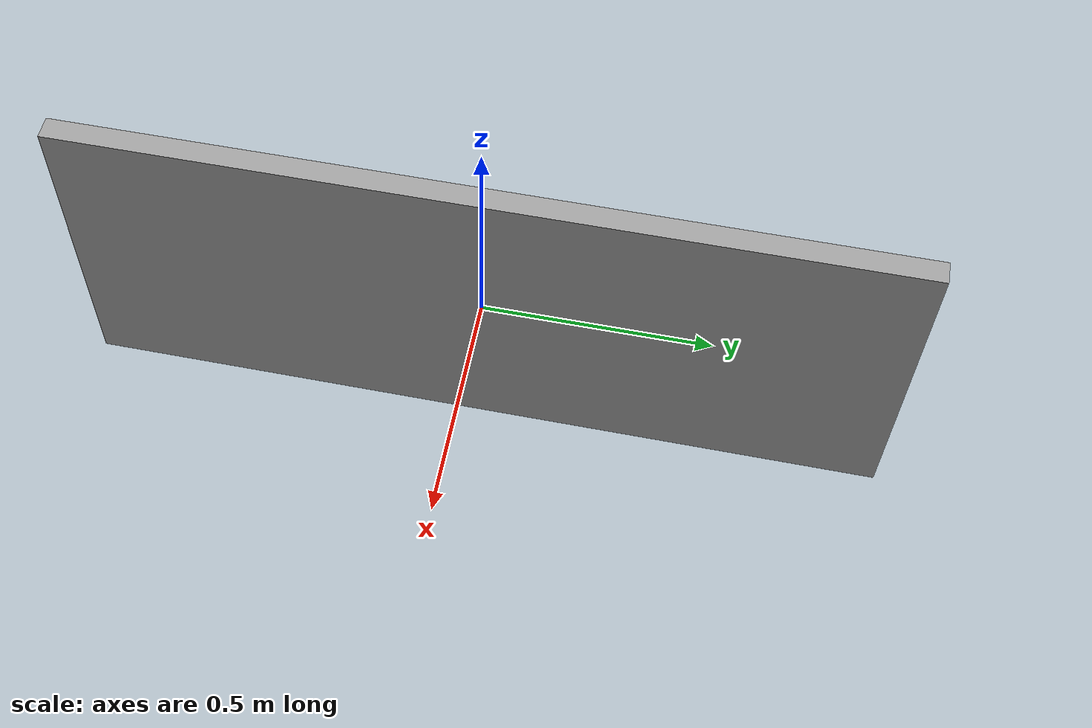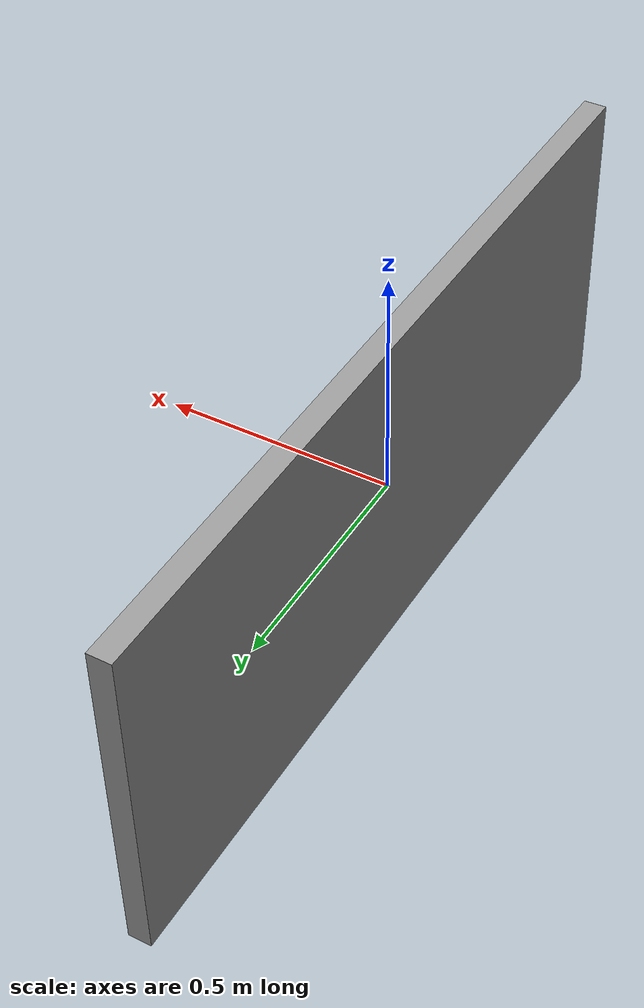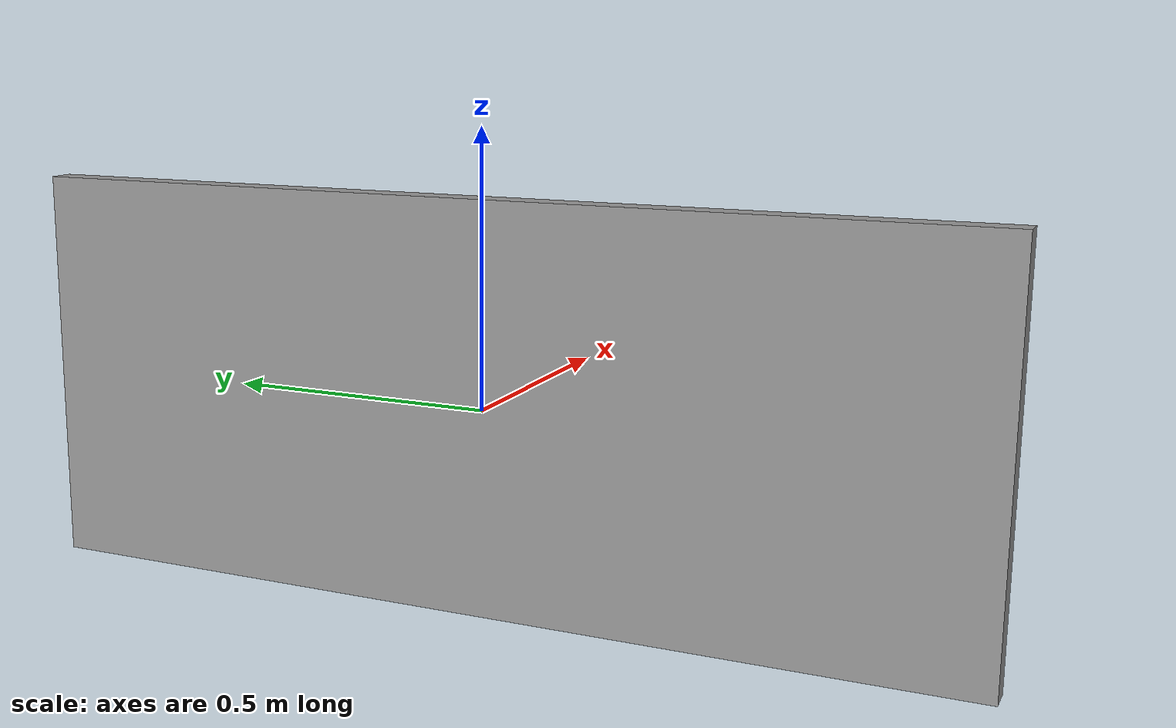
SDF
<?xml version="1.0" ?>
<sdf version="1.5">
  <model name="grey_wall">
    <static>true</static>
    <link name="grey_wall_link">
      <pose>0 0 0 0 0 1.57</pose>
      <collision name="collision">
        <geometry>
          <box>
            <size>1.826 0.05 0.755</size>
          </box>
        </geometry>
      </collision>
      <visual name="visual">
        <cast_shadows>false</cast_shadows>
        <geometry>
          <box>
            <size>1.826 0.05 0.755</size>
          </box>
        </geometry>
        <material>
          <script>
            <uri>model://grey_wall/materials/scripts</uri>
            <uri>model://grey_wall/materials/textures</uri>
            <name>vrc/grey_wall</name>
          </script>
        </material>
      </visual>
    </link>
  </model>
</sdf>
